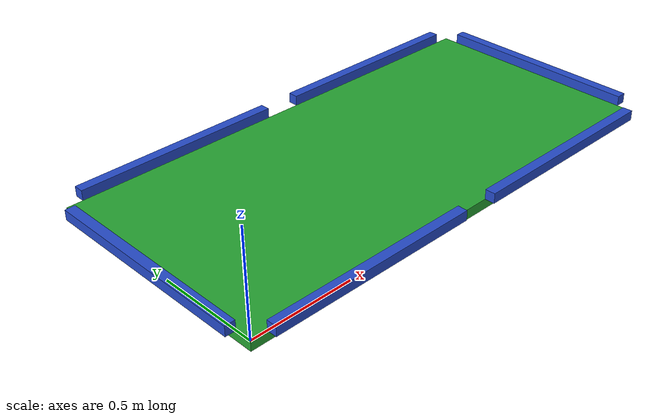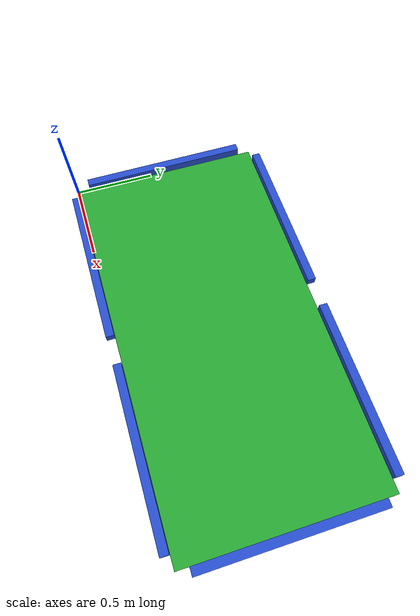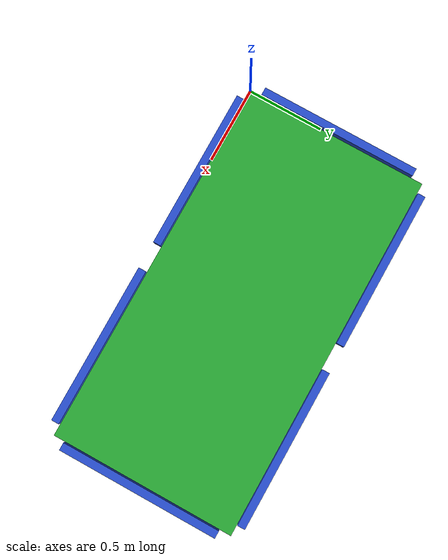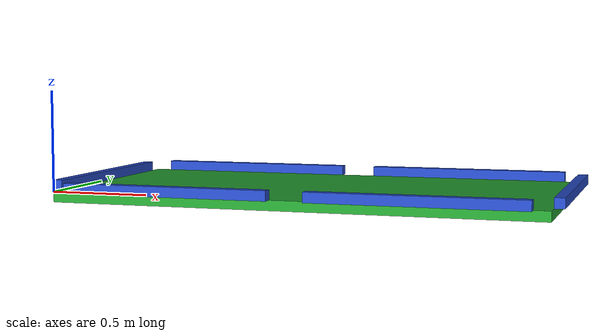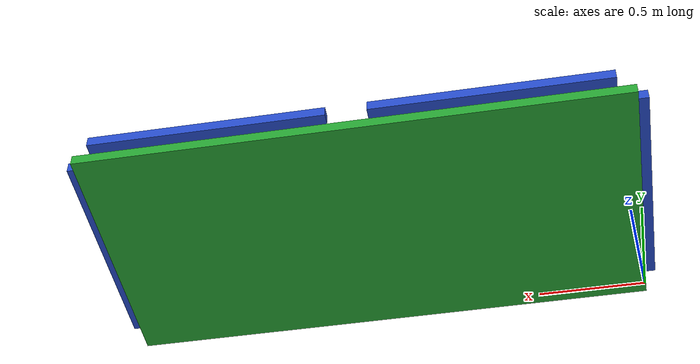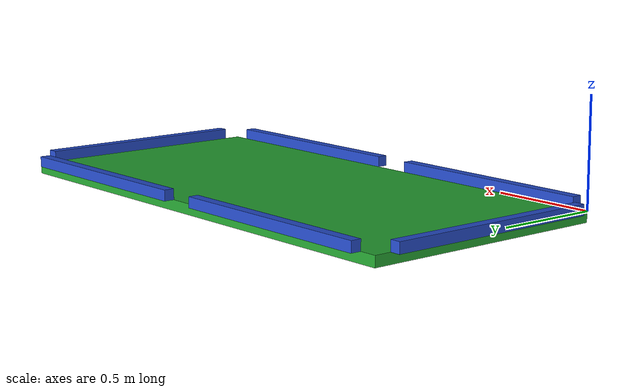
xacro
<robot name="pool_table"
       xmlns:xacro="http://ros.org/wiki/xacro"
       xmlns:sensor="http://playerstage.sourceforge.net/gazebo/xmlschema/#sensor"
       xmlns:controller="http://playerstage.sourceforge.net/gazebo/xmlschema/#controller"
       xmlns:interface="http://playerstage.sourceforge.net/gazebo/xmlschema/#interface">

  <xacro:property name="table_width" value="1.2192"/> <!-- 4ft -->
  <xacro:property name="table_length" value="2.4384"/> <!-- 8ft -->
  <xacro:property name="table_height" value=".05"/>
  <xacro:property name="side_pocket_dl" value="0.18"/>
  <xacro:property name="corner_pocket_dw" value="0.08"/>
  <xacro:property name="corner_pocket_dl" value="0.08"/>
  <xacro:property name="cushion_height" value="0.05"/>
  <xacro:property name="cushion_size" value="0.05"/>

  <!-- x along the long side, y short side, z up and origin at surface of table top -->
  <link name="pool_table">
    <inertial>
      <mass value="200.0" />
      <origin xyz="${table_length/2} ${table_width/2} ${-table_height/2}" rpy="0 0 0" />
      <inertia  ixx="100.0" ixy="0.0"  ixz="0.0"  iyy="100.0"  iyz="0.0"  izz="100.0" />
    </inertial>
    <visual>
      <origin xyz="${table_length/2} ${table_width/2} ${-table_height/2}" rpy="0 0 0" />
      <geometry>
        <box size="${table_length} ${table_width} ${table_height}"/>
      </geometry>
    </visual>
    <collision>
      <origin xyz="${table_length/2} ${table_width/2} ${-table_height/2}" rpy="0 0 0" />
      <geometry>
        <box size="${table_length} ${table_width} ${table_height}"/>
      </geometry>
    </collision>
  </link>
  <gazebo reference="pool_table">
    <material>Gazebo/Green</material>
    <mu1>1.0</mu1>
    <mu2>1.0</mu2>
  </gazebo>

  <!-- with origin at final approach -->
  <joint name="cushion_base_joint" type="fixed" >
    <parent link="pool_table" />
    <child link="cushion_base" />
    <origin xyz="0 0 0" rpy="0 0 0" />
  </joint>
  <link name="cushion_base">
    <inertial>
      <mass value="200.0" />
      <origin xyz="${-cushion_size/2} ${table_width/2} ${cushion_height/2}" rpy="0 0 0" />
      <inertia  ixx="100.0" ixy="0.0"  ixz="0.0"  iyy="100.0"  iyz="0.0"  izz="100.0" />
    </inertial>
    <visual>
      <origin xyz="${-cushion_size/2} ${table_width/2} ${cushion_height/2}" rpy="0 0 0" />
      <geometry>
        <box size="${cushion_size} ${table_width-2*corner_pocket_dw} ${cushion_height}"/>
      </geometry>
    </visual>
    <collision>
      <origin xyz="${-cushion_size/2} ${table_width/2} ${cushion_height/2}" rpy="0 0 0" />
      <geometry>
        <box size="${cushion_size} ${table_width-2*corner_pocket_dw} ${cushion_height}"/>
      </geometry>
    </collision>
  </link>
  <gazebo reference="cushion_base">
    <material>Gazebo/Blue</material>
  </gazebo>

  <joint name="cushion_crosswind_joint" type="fixed" >
    <parent link="pool_table" />
    <child link="cushion_crosswind" />
    <origin xyz="0 0 0" rpy="0 0 0" />
  </joint>
  <link name="cushion_crosswind">
    <inertial>
      <mass value="200.0" />
      <origin xyz="${table_length+cushion_size/2} ${table_width/2} ${cushion_height/2}" rpy="0 0 0" />
      <inertia  ixx="100.0" ixy="0.0"  ixz="0.0"  iyy="100.0"  iyz="0.0"  izz="100.0" />
    </inertial>
    <visual>
      <origin xyz="${table_length+cushion_size/2} ${table_width/2} ${cushion_height/2}" rpy="0 0 0" />
      <geometry>
        <box size="${cushion_size} ${table_width-2*corner_pocket_dw} ${cushion_height}"/>
      </geometry>
    </visual>
    <collision>
      <origin xyz="${table_length+cushion_size/2} ${table_width/2} ${cushion_height/2}" rpy="0 0 0" />
      <geometry>
        <box size="${cushion_size} ${table_width-2*corner_pocket_dw} ${cushion_height}"/>
      </geometry>
    </collision>
  </link>
  <gazebo reference="cushion_crosswind">
    <material>Gazebo/Blue</material>
  </gazebo>

  <joint name="cushion_entry_joint" type="fixed" >
    <parent link="pool_table" />
    <child link="cushion_entry" />
    <origin xyz="0 0 0" rpy="0 0 0" />
  </joint>
  <link name="cushion_entry">
    <inertial>
      <mass value="200.0" />
      <origin xyz="${0.75*(table_length-side_pocket_dl-2*corner_pocket_dl)+corner_pocket_dl+side_pocket_dl} ${table_width+cushion_size/2} ${cushion_height/2}" rpy="0 0 0" />
      <inertia  ixx="100.0" ixy="0.0"  ixz="0.0"  iyy="100.0"  iyz="0.0"  izz="100.0" />
    </inertial>
    <visual>
      <origin xyz="${0.75*(table_length-side_pocket_dl-2*corner_pocket_dl)+corner_pocket_dl+side_pocket_dl} ${table_width+cushion_size/2} ${cushion_height/2}" rpy="0 0 0" />
      <geometry>
        <box size="${0.5*(table_length-side_pocket_dl-2*corner_pocket_dl)} ${cushion_size} ${cushion_height}"/>
      </geometry>
    </visual>
    <collision>
      <origin xyz="${0.75*(table_length-side_pocket_dl-2*corner_pocket_dl)+corner_pocket_dl+side_pocket_dl} ${table_width+cushion_size/2} ${cushion_height/2}" rpy="0 0 0" />
      <geometry>
        <box size="${0.5*(table_length-side_pocket_dl-2*corner_pocket_dl)} ${cushion_size} ${cushion_height}"/>
      </geometry>
    </collision>
  </link>
  <gazebo reference="cushion_entry">
    <material>Gazebo/Blue</material>
  </gazebo>

  <joint name="cushion_downwind_joint" type="fixed" >
    <parent link="pool_table" />
    <child link="cushion_downwind" />
    <origin xyz="0 0 0" rpy="0 0 0" />
  </joint>
  <link name="cushion_downwind">
    <inertial>
      <mass value="200.0" />
      <origin xyz="${0.25*(table_length-side_pocket_dl-2*corner_pocket_dl)+corner_pocket_dl} ${table_width+cushion_size/2} ${cushion_height/2}" rpy="0 0 0" />
      <inertia  ixx="100.0" ixy="0.0"  ixz="0.0"  iyy="100.0"  iyz="0.0"  izz="100.0" />
    </inertial>
    <visual>
      <origin xyz="${0.25*(table_length-side_pocket_dl-2*corner_pocket_dl)+corner_pocket_dl} ${table_width+cushion_size/2} ${cushion_height/2}" rpy="0 0 0" />
      <geometry>
        <box size="${0.5*(table_length-side_pocket_dl-2*corner_pocket_dl)} ${cushion_size} ${cushion_height}"/>
      </geometry>
    </visual>
    <collision>
      <origin xyz="${0.25*(table_length-side_pocket_dl-2*corner_pocket_dl)+corner_pocket_dl} ${table_width+cushion_size/2} ${cushion_height/2}" rpy="0 0 0" />
      <geometry>
        <box size="${0.5*(table_length-side_pocket_dl-2*corner_pocket_dl)} ${cushion_size} ${cushion_height}"/>
      </geometry>
    </collision>
  </link>
  <gazebo reference="cushion_downwind">
    <material>Gazebo/Blue</material>
  </gazebo>

  <joint name="cushion_upwind_joint" type="fixed" >
    <parent link="pool_table" />
    <child link="cushion_upwind" />
    <origin xyz="0 0 0" rpy="0 0 0" />
  </joint>
  <link name="cushion_upwind">
    <inertial>
      <mass value="200.0" />
      <origin xyz="${0.75*(table_length-side_pocket_dl-2*corner_pocket_dl)+corner_pocket_dl+side_pocket_dl} ${-cushion_size/2} ${cushion_height/2}" rpy="0 0 0" />
      <inertia  ixx="100.0" ixy="0.0"  ixz="0.0"  iyy="100.0"  iyz="0.0"  izz="100.0" />
    </inertial>
    <visual>
      <origin xyz="${0.75*(table_length-side_pocket_dl-2*corner_pocket_dl)+corner_pocket_dl+side_pocket_dl} ${-cushion_size/2} ${cushion_height/2}" rpy="0 0 0" />
      <geometry>
        <box size="${0.5*(table_length-side_pocket_dl-2*corner_pocket_dl)} ${cushion_size} ${cushion_height}"/>
      </geometry>
    </visual>
    <collision>
      <origin xyz="${0.75*(table_length-side_pocket_dl-2*corner_pocket_dl)+corner_pocket_dl+side_pocket_dl} ${-cushion_size/2} ${cushion_height/2}" rpy="0 0 0" />
      <geometry>
        <box size="${0.5*(table_length-side_pocket_dl-2*corner_pocket_dl)} ${cushion_size} ${cushion_height}"/>
      </geometry>
    </collision>
  </link>
  <gazebo reference="cushion_upwind">
    <material>Gazebo/Blue</material>
  </gazebo>

  <joint name="cushion_final_joint" type="fixed" >
    <parent link="pool_table" />
    <child link="cushion_final" />
    <origin xyz="0 0 0" rpy="0 0 0" />
  </joint>
  <link name="cushion_final">
    <inertial>
      <mass value="200.0" />
      <origin xyz="${0.25*(table_length-side_pocket_dl-2*corner_pocket_dl)+corner_pocket_dl} ${-cushion_size/2} ${cushion_height/2}" rpy="0 0 0" />
      <inertia  ixx="100.0" ixy="0.0"  ixz="0.0"  iyy="100.0"  iyz="0.0"  izz="100.0" />
    </inertial>
    <visual>
      <origin xyz="${0.25*(table_length-side_pocket_dl-2*corner_pocket_dl)+corner_pocket_dl} ${-cushion_size/2} ${cushion_height/2}" rpy="0 0 0" />
      <geometry>
        <box size="${0.5*(table_length-side_pocket_dl-2*corner_pocket_dl)} ${cushion_size} ${cushion_height}"/>
      </geometry>
    </visual>
    <collision>
      <origin xyz="${0.25*(table_length-side_pocket_dl-2*corner_pocket_dl)+corner_pocket_dl} ${-cushion_size/2} ${cushion_height/2}" rpy="0 0 0" />
      <geometry>
        <box size="${0.5*(table_length-side_pocket_dl-2*corner_pocket_dl)} ${cushion_size} ${cushion_height}"/>
      </geometry>
    </collision>
  </link>
  <gazebo reference="cushion_final">
    <material>Gazebo/Blue</material>
  </gazebo>

  <gazebo>
    <!-- gazebo_ros_p3d for position groundtruth -->
    <controller:gazebo_ros_p3d name="p3d_pool_table_controller" plugin="libgazebo_ros_p3d.so">
        <alwaysOn>true</alwaysOn>
        <updateRate>100.0</updateRate>
        <bodyName>pool_table</bodyName>
        <topicName>pool_table_pose_ground_truth</topicName>
        <frameName>base_link</frameName>
        <interface:position name="p3d_pool_table_position"/>
    </controller:gazebo_ros_p3d>
    <static>true</static>
  </gazebo>

</robot>
